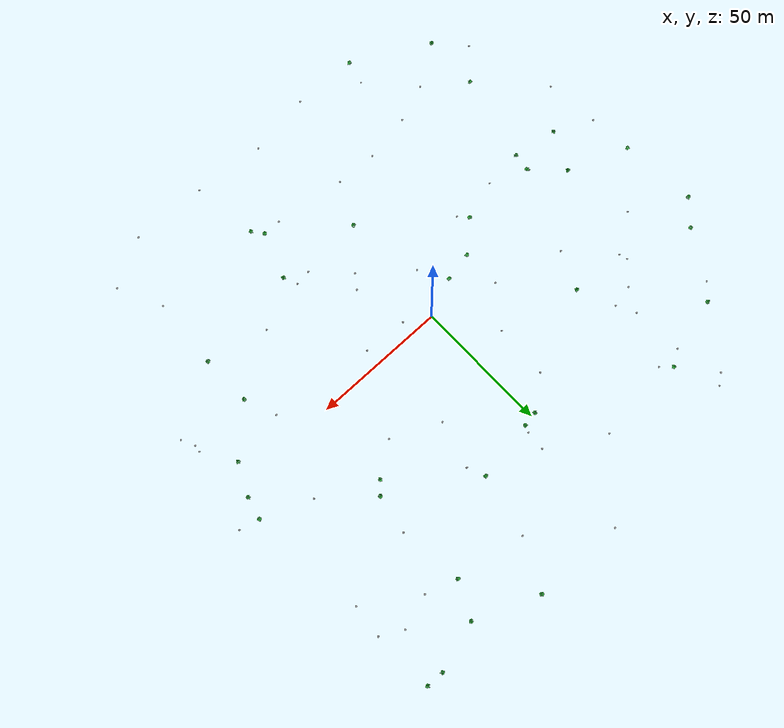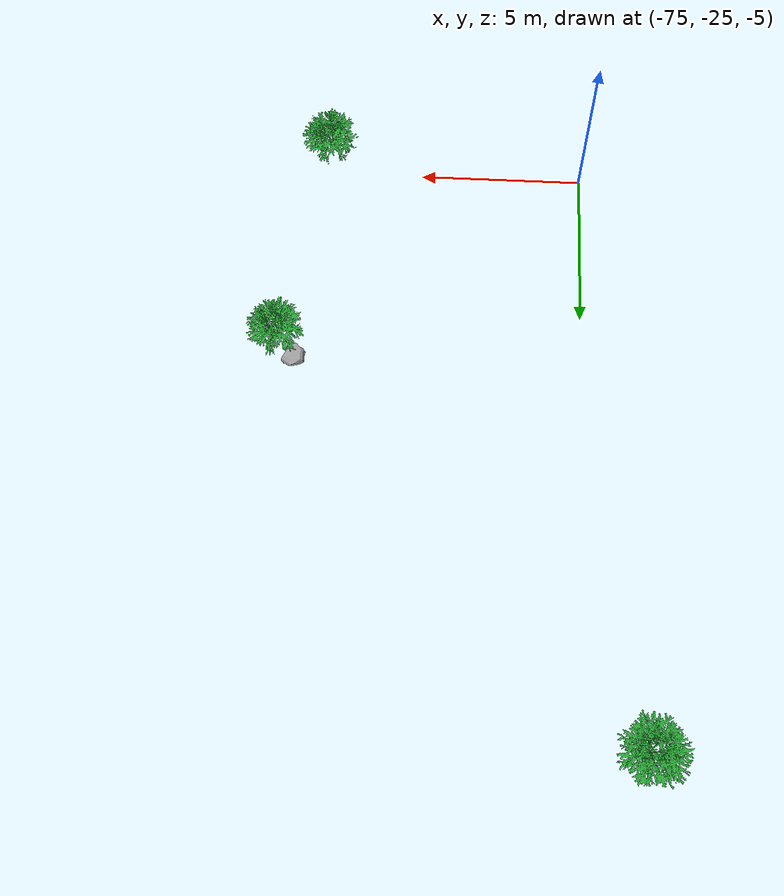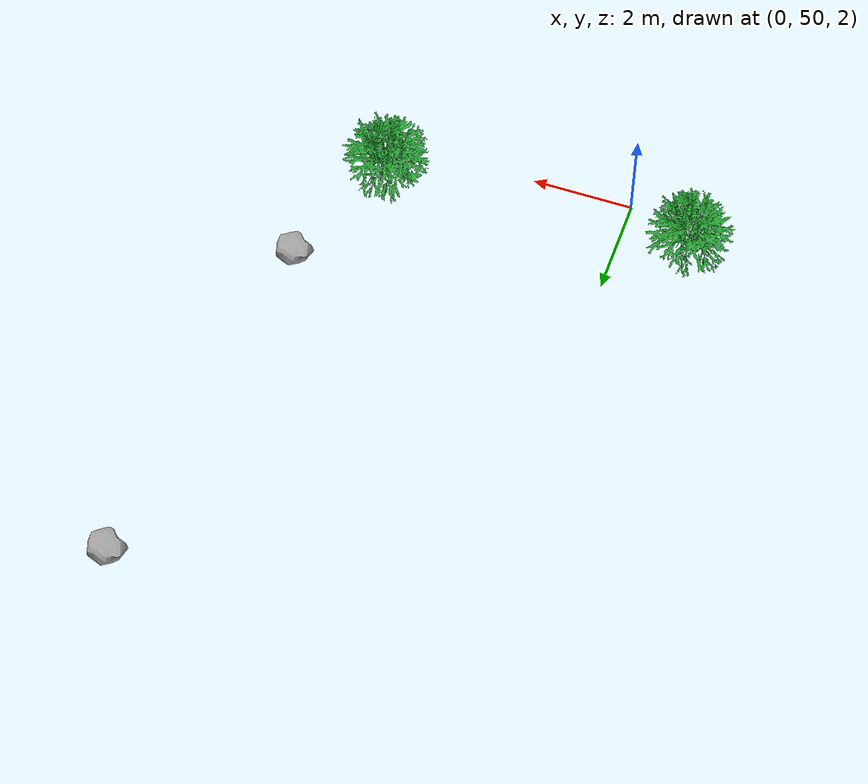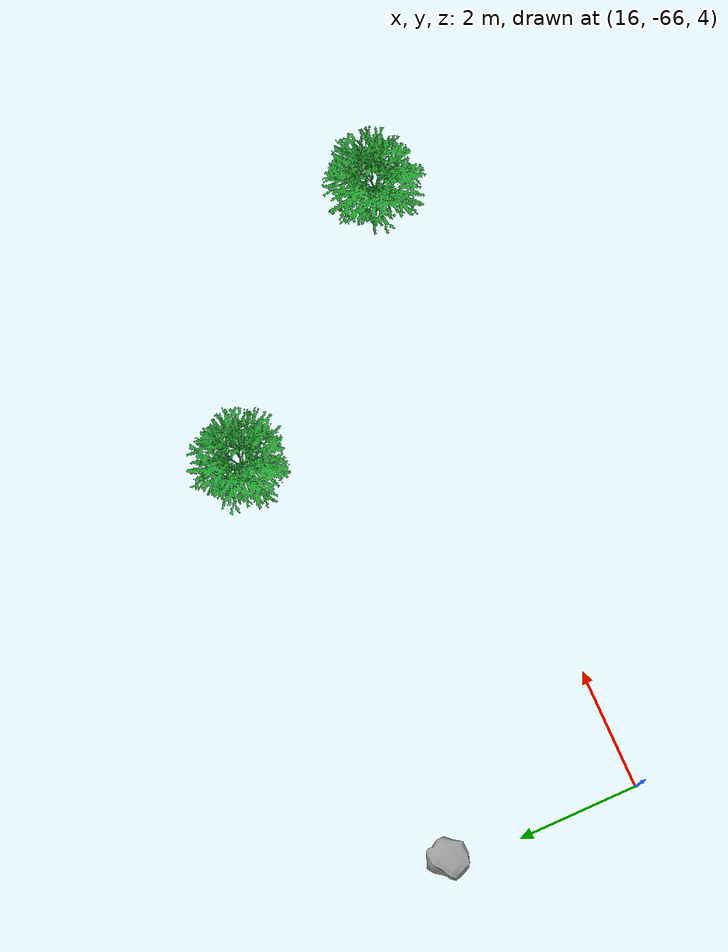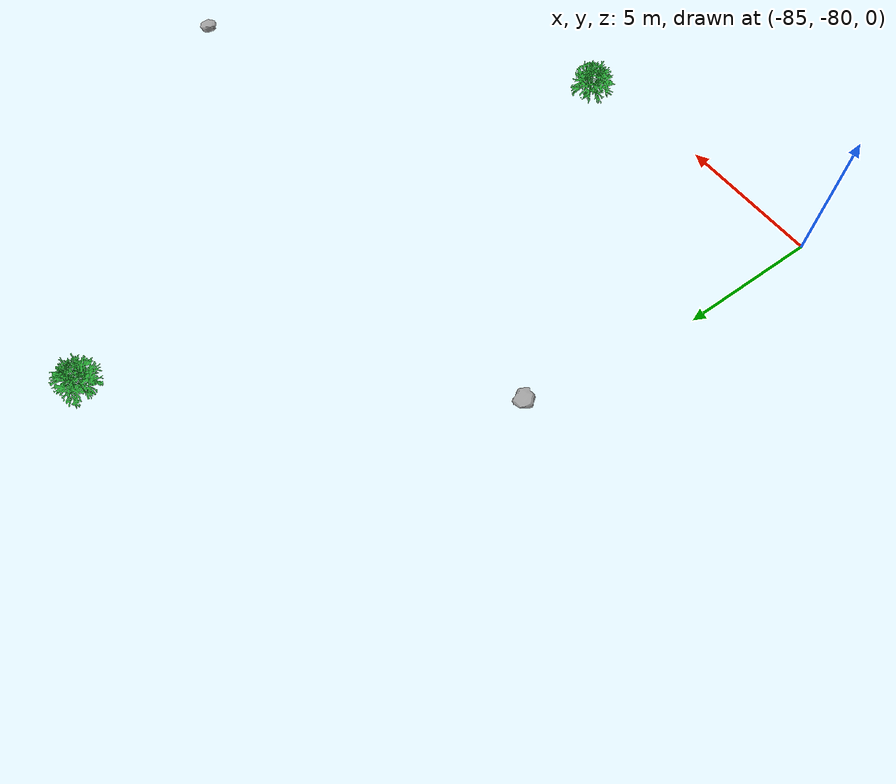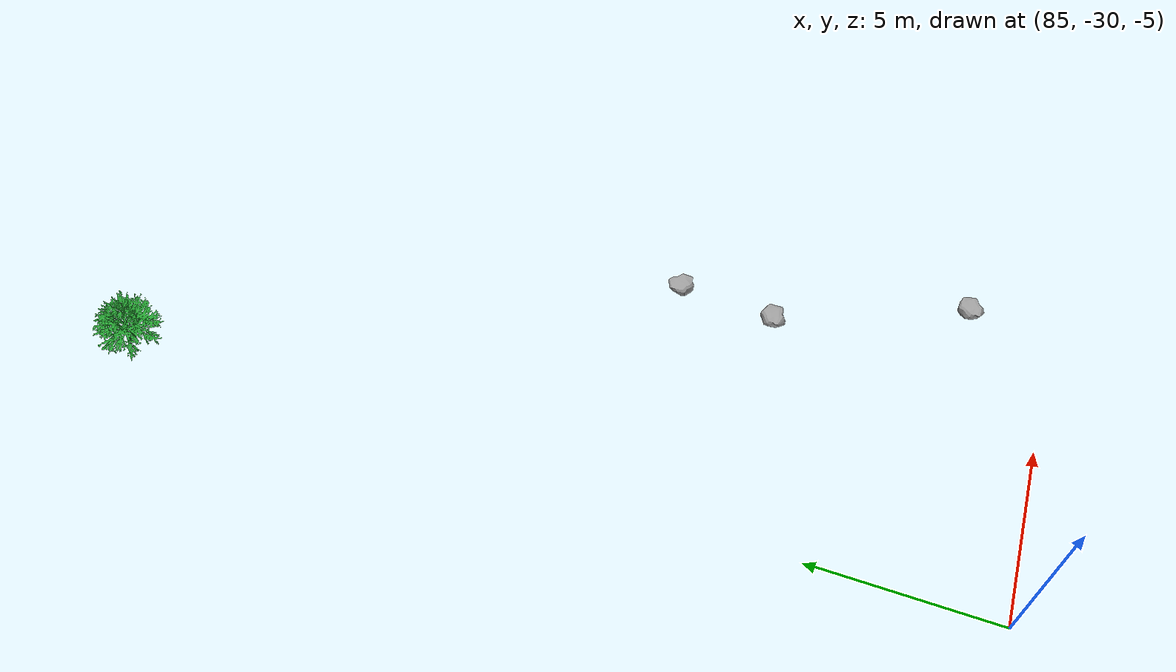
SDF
<sdf version="1.6">
 <world name="kin">
  <include><uri>model://sun</uri><pose>0 0 100 0 0 0</pose></include>
  <include>
   <uri>model://tree1</uri>
   <name>tree1_0</name>
   <pose>92.0521410673 12.1884216561 -3.33230756066 0 0 6.22234055086</pose>
  </include>
  <include>
   <uri>model://tree1</uri>
   <name>tree1_1</name>
   <pose>64.0892221978 86.5737521102 4.14349396665 0 0 2.68487563148</pose>
  </include>
  <include>
   <uri>model://tree1</uri>
   <name>tree1_2</name>
   <pose>-45.9398009864 27.2606502657 -4.45013309401 0 0 5.49836698415</pose>
  </include>
  <include>
   <uri>model://tree1</uri>
   <name>tree1_3</name>
   <pose>-37.8336900625 -19.7400024891 -6.0774721992 0 0 4.23190106145</pose>
  </include>
  <include>
   <uri>model://tree1</uri>
   <name>tree1_4</name>
   <pose>-90.5114149276 39.7514908396 1.65407808634 0 0 1.80256195875</pose>
  </include>
  <include>
   <uri>model://tree1</uri>
   <name>tree1_5</name>
   <pose>-74.9817999803 -79.5078045427 -0.724446960496 0 0 4.22006175823</pose>
  </include>
  <include>
   <uri>model://tree1</uri>
   <name>tree1_6</name>
   <pose>-47.4552903039 -95.6244820755 -3.01589812401 0 0 5.1791298492</pose>
  </include>
  <include>
   <uri>model://tree1</uri>
   <name>tree1_7</name>
   <pose>-1.25927125931 50.4122494361 1.72318185534 0 0 5.55087962879</pose>
  </include>
  <include>
   <uri>model://tree1</uri>
   <name>tree1_8</name>
   <pose>68.6801681859 -41.0003097524 0.906019340651 0 0 1.40215138485</pose>
  </include>
  <include>
   <uri>model://tree1</uri>
   <name>tree1_9</name>
   <pose>53.8154745343 31.6551679725 4.55047056368 0 0 0.554980600926</pose>
  </include>
  <include>
   <uri>model://tree1</uri>
   <name>tree1_10</name>
   <pose>-67.1253106371 -25.5322138063 -4.42326950945 0 0 2.72262951522</pose>
  </include>
  <include>
   <uri>model://tree1</uri>
   <name>tree1_11</name>
   <pose>26.3361440759 -66.1059345879 4.81213987969 0 0 2.40365630269</pose>
  </include>
  <include>
   <uri>model://tree1</uri>
   <name>tree1_12</name>
   <pose>29.3837197852 -45.2522362928 3.87518488121 0 0 1.794978794</pose>
  </include>
  <include>
   <uri>model://tree1</uri>
   <name>tree1_13</name>
   <pose>89.8719861964 3.89340177647 -3.32402888562 0 0 0.301297192337</pose>
  </include>
  <include>
   <uri>model://tree1</uri>
   <name>tree1_14</name>
   <pose>-98.2891609536 30.9829334663 2.33745572438 0 0 5.99827207797</pose>
  </include>
  <include>
   <uri>model://tree1</uri>
   <name>tree1_15</name>
   <pose>23.1774411577 -62.3768678428 4.2992865318 0 0 1.98060167161</pose>
  </include>
  <include>
   <uri>model://tree1</uri>
   <name>tree1_16</name>
   <pose>84.2340043754 -7.63278761233 -2.59504497749 0 0 3.2893742484</pose>
  </include>
  <include>
   <uri>model://tree1</uri>
   <name>tree1_17</name>
   <pose>-49.7721248684 71.3092994788 -2.75287035123 0 0 1.32356602819</pose>
  </include>
  <include>
   <uri>model://tree1</uri>
   <name>tree1_18</name>
   <pose>-74.7469112724 -58.1588053573 -1.91494399969 0 0 5.55544664961</pose>
  </include>
  <include>
   <uri>model://tree1</uri>
   <name>tree1_19</name>
   <pose>57.8049972946 73.7400005173 5.37909480955 0 0 0.859907951381</pose>
  </include>
  <include>
   <uri>model://tree1</uri>
   <name>tree1_20</name>
   <pose>-97.1562967139 1.87996180039 0.608256863827 0 0 2.85099810505</pose>
  </include>
  <include>
   <uri>model://tree1</uri>
   <name>tree1_21</name>
   <pose>88.281570032 91.5564655619 -0.688306753446 0 0 4.63686372328</pose>
  </include>
  <include>
   <uri>model://tree1</uri>
   <name>tree1_22</name>
   <pose>-15.1556684588 -6.89056351711 -3.55758439077 0 0 4.43875923722</pose>
  </include>
  <include>
   <uri>model://tree1</uri>
   <name>tree1_23</name>
   <pose>-3.44112126523 -44.8591269647 -0.883350636381 0 0 4.5721480579</pose>
  </include>
  <include>
   <uri>model://tree1</uri>
   <name>tree1_24</name>
   <pose>81.8891889718 91.8709658791 0.556141275882 0 0 1.81125521728</pose>
  </include>
  <include>
   <uri>model://tree1</uri>
   <name>tree1_25</name>
   <pose>41.3317084633 96.2153495505 5.95675572103 0 0 4.1476968267</pose>
  </include>
  <include>
   <uri>model://tree1</uri>
   <name>tree1_26</name>
   <pose>-76.2316361109 -7.70712369256 -3.04330606149 0 0 5.2988942203</pose>
  </include>
  <include>
   <uri>model://tree1</uri>
   <name>tree1_27</name>
   <pose>4.53755100221 51.4141511316 2.8158008114 0 0 5.01734664298</pose>
  </include>
  <include>
   <uri>model://tree1</uri>
   <name>tree1_28</name>
   <pose>-75.064563512 63.1410315599 -0.0475552535739 0 0 1.26592358463</pose>
  </include>
  <include>
   <uri>model://tree1</uri>
   <name>tree1_29</name>
   <pose>68.3690049429 -22.1053655594 0.428101312276 0 0 0.420748661612</pose>
  </include>
  <include>
   <uri>model://tree1</uri>
   <name>tree1_30</name>
   <pose>57.5649339064 35.8242182305 4.34279311869 0 0 6.09494808928</pose>
  </include>
  <include>
   <uri>model://tree1</uri>
   <name>tree1_31</name>
   <pose>27.3048328324 55.267076888 6.0782140791 0 0 5.70082840298</pose>
  </include>
  <include>
   <uri>model://tree1</uri>
   <name>tree1_32</name>
   <pose>-26.6506573811 -9.61064541308 -5.18310748807 0 0 2.36236348503</pose>
  </include>
  <include>
   <uri>model://tree1</uri>
   <name>tree1_33</name>
   <pose>-66.193639365 -18.7882023287 -4.61438001502 0 0 0.880519418085</pose>
  </include>
  <include>
   <uri>model://tree1</uri>
   <name>tree1_34</name>
   <pose>-82.9594086955 -22.1763119425 -2.01429927968 0 0 1.27696488386</pose>
  </include>
  <include>
   <uri>model://rock1</uri>
   <name>rock1_0</name>
   <pose>9.06747549981 -5.21131763363 0.778165725969 0 0 0.59553472834</pose>
  </include>
  <include>
   <uri>model://rock1</uri>
   <name>rock1_1</name>
   <pose>93.5307062011 -27.6979186725 -4.34096046636 0 0 5.49042711499</pose>
  </include>
  <include>
   <uri>model://rock1</uri>
   <name>rock1_2</name>
   <pose>-66.2902486861 28.4792175775 -2.80207719244 0 0 5.99850703606</pose>
  </include>
  <include>
   <uri>model://rock1</uri>
   <name>rock1_3</name>
   <pose>21.1776007607 -41.438998739 2.94909514932 0 0 1.01520862075</pose>
  </include>
  <include>
   <uri>model://rock1</uri>
   <name>rock1_4</name>
   <pose>16.184516232 -62.8356789409 3.46274881881 0 0 2.41646580695</pose>
  </include>
  <include>
   <uri>model://rock1</uri>
   <name>rock1_5</name>
   <pose>-45.2555626555 -86.7181804435 -3.28585482743 0 0 3.74180424104</pose>
  </include>
  <include>
   <uri>model://rock1</uri>
   <name>rock1_6</name>
   <pose>-46.0116304751 67.6620093732 -2.85806158956 0 0 0.787318079613</pose>
  </include>
  <include>
   <uri>model://rock1</uri>
   <name>rock1_7</name>
   <pose>32.409280508 78.2168122074 6.51621581206 0 0 4.5451834644</pose>
  </include>
  <include>
   <uri>model://rock1</uri>
   <name>rock1_8</name>
   <pose>29.4853415767 -90.5053726059 6.14175760325 0 0 0.485146555818</pose>
  </include>
  <include>
   <uri>model://rock1</uri>
   <name>rock1_9</name>
   <pose>-79.8347382331 19.0660526563 -1.31687478552 0 0 4.30688259204</pose>
  </include>
  <include>
   <uri>model://rock1</uri>
   <name>rock1_10</name>
   <pose>-96.3654364654 -14.8954987221 0.115975608527 0 0 0.593590960902</pose>
  </include>
  <include>
   <uri>model://rock1</uri>
   <name>rock1_11</name>
   <pose>24.7163955038 31.3715656312 4.71903057955 0 0 1.92134157964</pose>
  </include>
  <include>
   <uri>model://rock1</uri>
   <name>rock1_12</name>
   <pose>-14.9221718937 20.2761349212 -2.32588029607 0 0 6.16623485993</pose>
  </include>
  <include>
   <uri>model://rock1</uri>
   <name>rock1_13</name>
   <pose>91.5282768403 -19.9564773489 -4.08754550177 0 0 0.868395200501</pose>
  </include>
  <include>
   <uri>model://rock1</uri>
   <name>rock1_14</name>
   <pose>69.0158666133 69.8002678729 3.60915109286 0 0 2.62192573276</pose>
  </include>
  <include>
   <uri>model://rock1</uri>
   <name>rock1_15</name>
   <pose>-54.9162532752 48.1692130441 -2.92560503722 0 0 5.0032479062</pose>
  </include>
  <include>
   <uri>model://rock1</uri>
   <name>rock1_16</name>
   <pose>46.4172719245 -35.0358436254 3.50016954058 0 0 6.24556144103</pose>
  </include>
  <include>
   <uri>model://rock1</uri>
   <name>rock1_17</name>
   <pose>-84.1537189258 -68.7646190452 0.231554066417 0 0 0.579629502443</pose>
  </include>
  <include>
   <uri>model://rock1</uri>
   <name>rock1_18</name>
   <pose>81.3715154609 73.5120703469 1.17839197735 0 0 3.55183938205</pose>
  </include>
  <include>
   <uri>model://rock1</uri>
   <name>rock1_19</name>
   <pose>29.8396308035 48.7098643742 6.0218043964 0 0 6.27944005262</pose>
  </include>
  <include>
   <uri>model://rock1</uri>
   <name>rock1_20</name>
   <pose>-13.619916024 40.8604517309 -0.91642113951 0 0 4.07372002409</pose>
  </include>
  <include>
   <uri>model://rock1</uri>
   <name>rock1_21</name>
   <pose>91.2308770413 -22.6543294164 -4.01061080729 0 0 5.17457012496</pose>
  </include>
  <include>
   <uri>model://rock1</uri>
   <name>rock1_22</name>
   <pose>-8.87265678931 -17.1016126998 -2.60598630143 0 0 5.27529804481</pose>
  </include>
  <include>
   <uri>model://rock1</uri>
   <name>rock1_23</name>
   <pose>-59.7316669908 39.4605290643 -2.92921756 0 0 0.878146177459</pose>
  </include>
  <include>
   <uri>model://rock1</uri>
   <name>rock1_24</name>
   <pose>88.0025282766 56.708156982 -0.28336364442 0 0 0.606318366552</pose>
  </include>
  <include>
   <uri>model://rock1</uri>
   <name>rock1_25</name>
   <pose>-52.6325739567 12.5898746237 -5.04996412612 0 0 5.48873257042</pose>
  </include>
  <include>
   <uri>model://rock1</uri>
   <name>rock1_26</name>
   <pose>99.2870507046 9.96124670757 -4.65024084705 0 0 4.89923569494</pose>
  </include>
  <include>
   <uri>model://rock1</uri>
   <name>rock1_27</name>
   <pose>-34.7072368441 -23.2557610055 -5.89257700358 0 0 5.94248657672</pose>
  </include>
  <include>
   <uri>model://rock1</uri>
   <name>rock1_28</name>
   <pose>-11.5966609259 -61.2591775039 -1.43891085171 0 0 5.24342809324</pose>
  </include>
  <include>
   <uri>model://rock1</uri>
   <name>rock1_29</name>
   <pose>-60.2005783738 84.0286790634 -2.22873636989 0 0 0.0586738016938</pose>
  </include>
  <include>
   <uri>model://rock1</uri>
   <name>rock1_30</name>
   <pose>25.7102783646 -5.54311918197 2.98425142993 0 0 2.27945419903</pose>
  </include>
  <include>
   <uri>model://rock1</uri>
   <name>rock1_31</name>
   <pose>-15.499135079 72.806254851 -0.420670757782 0 0 3.65347560345</pose>
  </include>
  <include>
   <uri>model://rock1</uri>
   <name>rock1_32</name>
   <pose>27.1080974741 -40.5218643982 3.49050963462 0 0 1.05937078781</pose>
  </include>
  <include>
   <uri>model://rock1</uri>
   <name>rock1_33</name>
   <pose>-51.5133167434 41.1842910381 -3.46667525234 0 0 4.44292605021</pose>
  </include>
  <include>
   <uri>model://rock1</uri>
   <name>rock1_34</name>
   <pose>-56.5306401143 86.8731427027 -2.66413383414 0 0 3.2634971346</pose>
  </include>
  <include>
   <uri>model://rock1</uri>
   <name>rock1_35</name>
   <pose>-66.7001647778 -18.1087272761 -4.54958203457 0 0 6.16550837806</pose>
  </include>
  <include>
   <uri>model://rock1</uri>
   <name>rock1_36</name>
   <pose>89.3274569563 68.961147093 -0.363335105386 0 0 2.45165567386</pose>
  </include>
  <include>
   <uri>model://rock1</uri>
   <name>rock1_37</name>
   <pose>64.0216177539 -10.1752806782 1.20966240264 0 0 2.38890740953</pose>
  </include>
  <include>
   <uri>model://rock1</uri>
   <name>rock1_38</name>
   <pose>60.3497201794 50.0961782707 4.65496352967 0 0 5.5222471802</pose>
  </include>
  <include>
   <uri>model://rock1</uri>
   <name>rock1_39</name>
   <pose>-55.5942776257 67.5844950289 -2.40865023737 0 0 2.59839386068</pose>
  </include>
  <include>
   <uri>model://rock1</uri>
   <name>rock1_40</name>
   <pose>5.47649866789 53.8883807232 3.06803350128 0 0 4.23389679884</pose>
  </include>
  <include>
   <uri>model://rock1</uri>
   <name>rock1_41</name>
   <pose>-46.3779209095 -65.079712592 -4.30777368715 0 0 1.38715201129</pose>
  </include>
  <include>
   <uri>model://rock1</uri>
   <name>rock1_42</name>
   <pose>-94.7454576742 -35.494374455 0.204665078119 0 0 3.07771167576</pose>
  </include>
  <include>
   <uri>model://rock1</uri>
   <name>rock1_43</name>
   <pose>12.8552247394 -25.1183222426 1.29795949372 0 0 5.69553700522</pose>
  </include>
  <include>
   <uri>model://rock1</uri>
   <name>rock1_44</name>
   <pose>-52.7504133308 -24.6583850683 -5.86542668296 0 0 4.10816222113</pose>
  </include>
  <include>
   <uri>model://rock1</uri>
   <name>rock1_45</name>
   <pose>-80.2781673896 57.5699742294 0.688511758868 0 0 5.62012385995</pose>
  </include>
  <include>
   <uri>model://rock1</uri>
   <name>rock1_46</name>
   <pose>7.28970133017 97.1791297968 2.84294955504 0 0 2.37187746042</pose>
  </include>
  <include>
   <uri>model://rock1</uri>
   <name>rock1_47</name>
   <pose>74.5282027154 -83.4509282123 2.02238344143 0 0 4.04140927361</pose>
  </include>
  <include>
   <uri>model://rock1</uri>
   <name>rock1_48</name>
   <pose>-67.063174546 31.6735881981 -2.50973388872 0 0 3.78128990648</pose>
  </include>
  <include>
   <uri>model://rock1</uri>
   <name>rock1_49</name>
   <pose>2.2423056468 -90.1262201419 2.42829539644 0 0 2.52803745046</pose>
  </include>
  <include>
   <uri>model://rock1</uri>
   <name>rock1_50</name>
   <pose>42.1160414238 23.2535847016 4.85099644887 0 0 1.31993953802</pose>
  </include>
  <include>
   <uri>model://rock1</uri>
   <name>rock1_51</name>
   <pose>-27.9930642961 -61.5656073945 -3.7273661001 0 0 3.00711492738</pose>
  </include>
  <include>
   <uri>model://rock1</uri>
   <name>rock1_52</name>
   <pose>-60.3142920187 -70.1898347462 -3.1537016121 0 0 3.07523138344</pose>
  </include>
  <include>
   <uri>model://rock1</uri>
   <name>rock1_53</name>
   <pose>67.030328394 -66.9453195584 2.61250452779 0 0 3.58886844789</pose>
  </include>
  <include>
   <uri>model://rock1</uri>
   <name>rock1_54</name>
   <pose>74.0773839367 20.3392847298 0.64265608277 0 0 2.9288303247</pose>
  </include>
  <include>
   <uri>model://rock1</uri>
   <name>rock1_55</name>
   <pose>57.0416715433 -91.9087214648 5.23158332373 0 0 4.77596887443</pose>
  </include>
  <include>
   <uri>model://rock1</uri>
   <name>rock1_56</name>
   <pose>9.04317579543 -30.3931094221 0.794584982888 0 0 5.54636011297</pose>
  </include>
  <include>
   <uri>model://rock1</uri>
   <name>rock1_57</name>
   <pose>-26.667645103 5.28032835363 -4.72611542089 0 0 2.99517880308</pose>
  </include>
  <include>
   <uri>model://rock1</uri>
   <name>rock1_58</name>
   <pose>-22.7918364468 -95.7190058199 -1.65539342033 0 0 0.347455316157</pose>
  </include>
  <include>
   <uri>model://rock1</uri>
   <name>rock1_59</name>
   <pose>6.14074127386 61.1642566224 3.368160129 0 0 4.27937767929</pose>
  </include>
  <scene><sky><clouds><speed>1</speed></clouds></sky><grid>0</grid></scene>
  <gravity>0 0 0</gravity>
  <physics name="default_physics" default="0" type="ode">
   <max_step_size>0.01</max_step_size>
   <real_time_factor>1</real_time_factor>
   <real_time_update_rate>100</real_time_update_rate>
  </physics>
 </world>
</sdf>

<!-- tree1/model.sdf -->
<sdf version="1.5">

    <model name="tree1">
      <static>true</static>
      <link name="tree">
	<visual name="body_visual">
	    <pose>0 0 0 0 0 0</pose>
	    <geometry>
	      <mesh>
		<scale>0.2 0.2 0.2</scale>
		<uri>model://tree1/meshes/tree01.stl</uri>
	      </mesh>
	    </geometry>
	    <material>
	      <script>
		<name>Gazebo/Green</name>
		<uri>file://media/materials/scripts/gazebo.material</uri>
	      </script>
	    </material>
	  </visual>
      </link>
    </model>

</sdf>

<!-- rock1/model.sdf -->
<sdf version="1.5">

    <model name="rock1">
      <static>true</static>
      <link name="rock">
	<visual name="body_visual">
	    <pose>0 0 0 0 0 0</pose>
	    <geometry>
	      <mesh>
		<scale>0.2 0.2 0.2</scale>
		<uri>model://rock1/meshes/rock1.stl</uri>
	      </mesh>
	    </geometry>
	    <material>
	      <script>
		<name>Gazebo/Gray</name>
		<uri>file://media/materials/scripts/gazebo.material</uri>
	      </script>
	    </material>
	  </visual>
      </link>
    </model>

</sdf>
